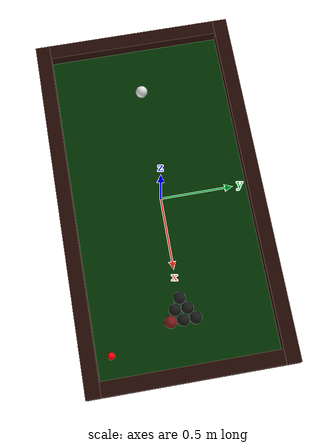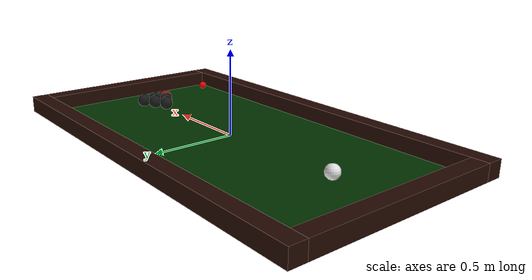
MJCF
<mujoco model="billiard">
    <visual>
        <quality shadowsize="4096" />
        <global offwidth="800" offheight="800" />
        <rgba haze="1 1 1 1" />
        <headlight ambient="0.5 0.5 0.5" diffuse="0.6 0.6 0.6" specular="0.5 0.5 0.5" />
    </visual>

    <default>
        <geom solimp="0.9 0.95 0.01 0.5 2" solref="0.01 0.2" condim="3"/>
    </default>

    <option impratio="10" iterations="1" ls_iterations="4" timestep="0.001">
        <flag warmstart="enable" refsafe="disable"/>
    </option>

    <custom>
        <numeric data="15" name="max_contact_points"/>
        <numeric data="15" name="max_geom_pairs"/>
    </custom>

    <asset>
        <texture type="skybox" builtin="gradient" rgb1="1. 1. 1." rgb2="1. 1. 1." width="32" height="512"/>

        <!-- Green Felt Table Texture -->
        <texture name="felt" type="2d" builtin="flat" rgb1="0.05 0.4 0.05" rgb2="0.05 0.4 0.05" width="512" height="512"/>
        <material name="felt" texture="felt" texuniform="true" reflectance="0.1" rgba="0.1 0.5 0.1 1"/>

        <!-- Wooden Cushion Texture -->
        <texture name="wood" type="2d" builtin="checker" rgb1="0.4 0.2 0.1" rgb2="0.3 0.15 0.07" width="128" height="128"/>
        <material name="wood" texture="wood" texrepeat="3 3" texuniform="true" reflectance="0.2" rgba="0.4 0.2 0.1 1"/>

        <!-- Cue Ball with Rolling Marker (Red & White Checker) -->
        <texture name="cue_ball" type="cube" builtin="flat" mark="cross" width="64" height="64" rgb1="0.9 0.9 0.9" rgb2="0.9 0.9 0.9" markrgb="0 0 0"/>
        <material name="cue_ball" texture="cue_ball" texuniform="true" rgba="1 1 1 1." reflectance="0.7"/>

        <!-- Ball Material (reuse eight_ball texture for the rack balls) -->
        <texture name="eight_ball" type="cube" builtin="flat" mark="cross" width="64" height="64" rgb1="0.1 0.1 0.1" rgb2="0.1 0.1 0.1" markrgb="1 1 1"/>
        <material name="eight_ball" texture="eight_ball" texuniform="true" rgba="1 1 1 1."/>

        <texture name="red_ball" type="cube" builtin="flat" mark="cross" width="64" height="64" rgb1="0.5 0.1 0.1" rgb2="0.5 0.1 0.1" markrgb="1 1 1"/>
        <material name="red_ball" texture="red_ball" texuniform="true" rgba="1 1 1 1."/>
    </asset>

    <worldbody>
        <!-- Billiard Table Surface -->
        <geom name="table" type="plane" material="felt" size="1.2 0.6 0.02" pos="0 0 -0.015" contype="1" conaffinity="2"/>

        <!-- Wooden Cushions -->
        <geom name="cushion1" type="box" material="wood" size="1.25 0.05 0.05" pos="0 0.65 0.025"/>
        <geom name="cushion2" type="box" material="wood" size="1.25 0.05 0.05" pos="0 -0.65 0.025"/>
        <geom name="cushion3" type="box" material="wood" size="0.05 0.6 0.05" pos="1.2 0 0.025"/>
        <geom name="cushion4" type="box" material="wood" size="0.05 0.6 0.05" pos="-1.2 0 0.025"/>

        <!-- Lighting -->
        <light directional="true" diffuse="0.5 0.5 0.5" specular="0.4 0.4 0.4" pos="0 0 3" dir="0 0 -1"/>
        <light directional="true" diffuse="0.4 0.4 0.4" specular="0.2 0.2 0.2" pos="0.2 0.2 3" dir="-1 -1 -1"/>

        <!-- Cameras -->
        <camera name="centric_angle" pos="-1.956 -0.019 1.330" xyaxes="-0.001 -1.000 -0.000 0.665 -0.000 0.747"/>
        <camera name="side_angle" pos="0.012 -2.497 1.323" xyaxes="1.000 -0.000 -0.000 0.000 0.449 0.894"/>
        <camera name="birdseye_close" pos="0 0 1.2" xyaxes="1 0 0 0 1 0"/>
        <camera name="birdseye" pos="0.000 -0.040 2.295" xyaxes="1.000 0.003 0.000 -0.003 1.000 0.017"/>

        <!-- Cue Ball at Typical Start Position (remains on the left side) -->
        <body name="cue_ball" pos="-0.8 0 0.035">
            <joint type="free" damping="0.0001"/>
            <geom name="cue_geom" type="sphere" size="0.042" material="cue_ball" mass="0.17" contype="7" friction="0.2 0.01 0.01"/>
        </body>

        <!-- 6-Ball Rack (rotated by 180° relative to its center) -->
        <!-- Row 1 (Apex, now closest to the cue ball) -->
        <body name="ball1" pos="0.705 0 0.035">
            <joint type="free" damping="0.0001"/>
            <geom name="ball1_geom" type="sphere" size="0.042" material="eight_ball" mass="0.17" contype="7" friction="0.2 0.01 0.01"/>
        </body>
        <!-- Row 2 -->
        <body name="ball2" pos="0.779 -0.042 0.035">
            <joint type="free" damping="0.0001"/>
            <geom name="ball2_geom" type="sphere" size="0.042" material="eight_ball" mass="0.17" contype="7" friction="0.2 0.01 0.01"/>
        </body>
        <body name="ball3" pos="0.779 0.042 0.035">
            <joint type="free" damping="0.0001"/>
            <geom name="ball3_geom" type="sphere" size="0.042" material="eight_ball" mass="0.17" contype="7" friction="0.2 0.01 0.01"/>
        </body>
        <!-- Row 3 -->
        <body name="eight_ball" pos="0.852 -0.084 0.035">
            <joint type="free" damping="0.0001"/>
            <geom name="ball4_geom" type="sphere" size="0.042" material="red_ball" mass="0.17" contype="7" friction="0.2 0.01 0.01"/>
        </body>
        <body name="ball5" pos="0.852 0.000 0.035">
            <joint type="free" damping="0.0001"/>
            <geom name="ball5_geom" type="sphere" size="0.042" material="eight_ball" mass="0.17" contype="7" friction="0.2 0.01 0.01"/>
        </body>
        <body name="ball6" pos="0.852 0.084 0.035">
            <joint type="free" damping="0.0001"/>
            <geom name="ball6_geom" type="sphere" size="0.042" material="eight_ball" mass="0.17" contype="7" friction="0.2 0.01 0.01"/>
        </body>

        <!-- Mocap Target in the Right Corner (unchanged) -->
        <body mocap="true" name="mocap_target" pos="1. -0.5 0.02">
            <geom type="sphere" size="0.025" rgba="1 0 0 1" contype="0" conaffinity="0"/>
        </body>
    </worldbody>
</mujoco>
